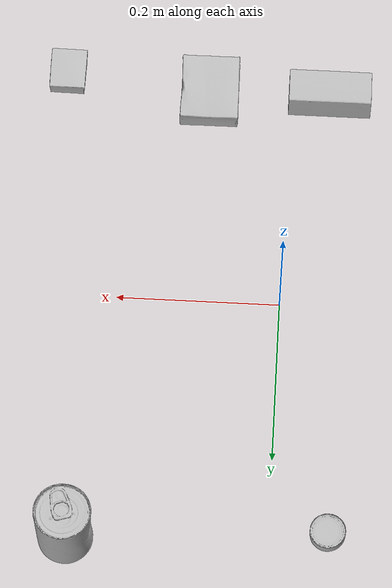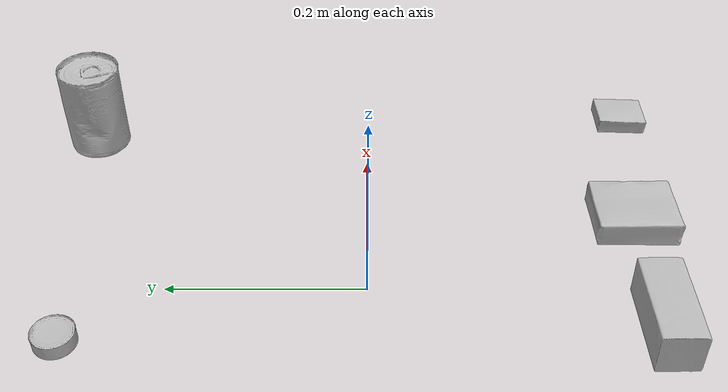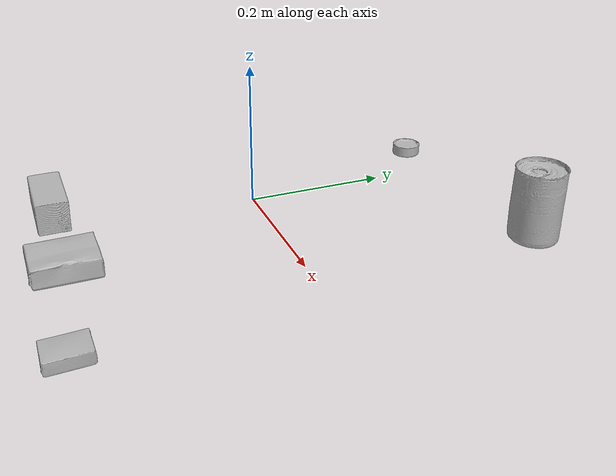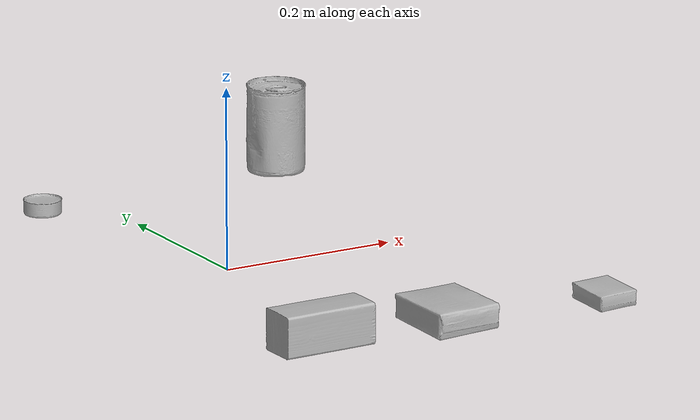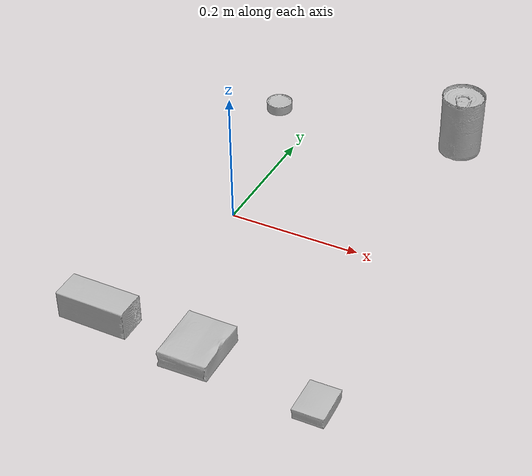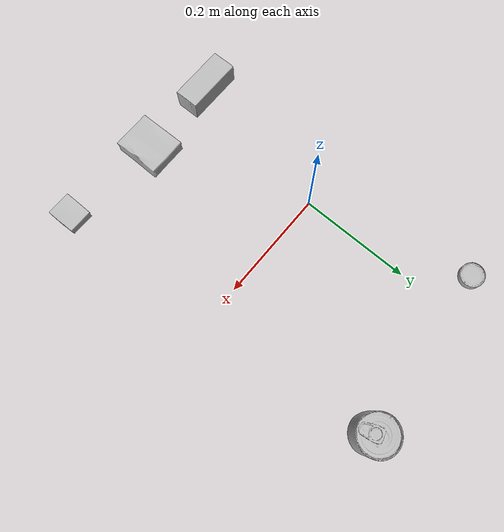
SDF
<?xml version="1.0" ?>
<sdf version="1.4">
  <world name="default">
    <light name="light1" type="point">
      <pose>0 0 1 0 0 0</pose>
      <diffuse>3 3 3 1</diffuse>
      <specular>3 3 3 1</specular>
    </light>
    <light name="light2" type="point">
      <pose>0 0.5 2 0 0 0</pose>
      <diffuse>1 1 1 1</diffuse>
      <specular>1 1 1 1</specular>
    </light>
    <light name="light3" type="point">
      <pose>0 0.5 2 0 0 0</pose>
      <diffuse>3 3 3 1</diffuse>
      <specular>3 3 3 1</specular>
    </light>
    <scene>
      <ambient>0.7 0.7 0.7</ambient>
    </scene>
    <model name="box1">
      <link name="link_box1">
        <collision name="default">
          <geometry>
            <mesh>
              <uri>model://pudding_box/collision_meshes/collision.obj</uri>
              <scale>0.5 0.5 0.5</scale>
            </mesh>
          </geometry>
          <surface>
            <friction>
              <ode>
                <mu>0.5</mu>
                <mu2>0.5</mu2>
              </ode>
            </friction>
          </surface>
        </collision>
        <visual name="default">
          <geometry>
            <mesh>
              <uri>model://pudding_box/visual_meshes/visual.dae</uri>
              <scale>0.5 0.5 0.5</scale>
            </mesh>
          </geometry>
        </visual>
        <inertial>
          <mass>0.049221161752939224</mass>
          <pose>0.00024474109522998333 0.00040339428232982755 -0.0002594413817860186 0.005213101772454675 -0.006603800120423707 0.020079827019105066</pose>
          <inertia>
            <ixx>1.3910499e-05</ixx>
            <iyy>9.3590825e-06</iyy>
            <izz>2.0542482e-05</izz>
            <ixy>0</ixy>
            <ixz>0</ixz>
            <iyz>0</iyz>
          </inertia>
        </inertial>
      </link>
      <pose>0.2797413170337677 -0.3002520799636841 0.009862902574241161 0.02234864916861904 -0.011391674284862428 -9.398371422774804e-05</pose>
    </model>
    <model name="box2">
      <link name="link_box2">
        <collision name="default">
          <geometry>
            <mesh>
              <uri>model://gelatin_box/collision_meshes/collision.obj</uri>
              <scale>1.0 1.0 1.0</scale>
            </mesh>
          </geometry>
          <surface>
            <friction>
              <ode>
                <mu>0.5</mu>
                <mu2>0.5</mu2>
              </ode>
            </friction>
          </surface>
        </collision>
        <visual name="default">
          <geometry>
            <mesh>
              <uri>model://gelatin_box/visual_meshes/visual.dae</uri>
              <scale>1.0 1.0 1.0</scale>
            </mesh>
          </geometry>
        </visual>
        <inertial>
          <mass>0.1975366622209549</mass>
          <pose>0.000431961816502735 0.00011156871187267825 -0.00036403207923285663 -0.0010503719683328595 -0.0047558182256164224 0.016440557608480007</pose>
          <inertia>
            <ixx>0.00013944478</ixx>
            <iyy>9.960467e-05</iyy>
            <izz>0.00021226601</izz>
            <ixy>0</ixy>
            <ixz>0</ixz>
            <iyz>0</iyz>
          </inertia>
        </inertial>
      </link>
      <pose>0.09995126724243164 -0.2800717055797577 0.01516831386834383 0.005597478734021536 -0.007304598263505775 7.717652597725185e-06</pose>
    </model>
    <model name="box3">
      <link name="link_box3">
        <collision name="default">
          <geometry>
            <mesh>
              <uri>model://wood_block/collision_meshes/collision.obj</uri>
              <scale>0.5 0.5 0.5</scale>
            </mesh>
          </geometry>
          <surface>
            <friction>
              <ode>
                <mu>0.5</mu>
                <mu2>0.5</mu2>
              </ode>
            </friction>
          </surface>
        </collision>
        <visual name="default">
          <geometry>
            <mesh>
              <uri>model://wood_block/visual_meshes/visual.dae</uri>
              <scale>0.5 0.5 0.5</scale>
            </mesh>
          </geometry>
        </visual>
        <inertial>
          <mass>0.2799808979034424</mass>
          <pose>-2.9066577553749084e-06 -0.000285404734313488 0.00013204291462898254 -0.05220811074253327 -0.005192695744074178 -0.0068613776969266935</pose>
          <inertia>
            <ixx>9.3664195e-05</ixx>
            <iyy>0.0002958853</iyy>
            <izz>0.00029477844</izz>
            <ixy>0</ixy>
            <ixz>0</ixz>
            <iyz>0</iyz>
          </inertia>
        </inertial>
      </link>
      <pose>-0.05005832016468048 -0.27943435311317444 0.022629261016845703 -0.005208557175208011 0.0057186907649564404 0.005304938193623896</pose>
    </model>
    <model name="can1">
      <link name="link_can1">
        <collision name="default">
          <geometry>
            <mesh>
              <uri>model://tomato_soup_can/collision_meshes/collision.obj</uri>
              <scale>1.0 1.0 1.0</scale>
            </mesh>
          </geometry>
          <surface>
            <friction>
              <ode>
                <mu>0.5</mu>
                <mu2>0.5</mu2>
              </ode>
            </friction>
          </surface>
        </collision>
        <visual name="default">
          <geometry>
            <mesh>
              <uri>model://tomato_soup_can/visual_meshes/visual.dae</uri>
              <scale>1.0 1.0 1.0</scale>
            </mesh>
          </geometry>
        </visual>
        <inertial>
          <mass>0.35683923959732056</mass>
          <pose>0.00012652271834667772 0.00010805513738887385 -0.0017973982030525804 0.007020067402313596 0.00042299257688944205 -0.009903281374499336</pose>
          <inertia>
            <ixx>0.0003912439</ixx>
            <iyy>0.00038898273</iyy>
            <izz>0.00020277809</izz>
            <ixy>0</ixy>
            <ixz>0</ixz>
            <iyz>0</iyz>
          </inertia>
        </inertial>
      </link>
      <pose>0.2399459183216095 0.31000205874443054 0.05127400904893875 -5.177825358758968e-07 -6.555926893515359e-07 1.5145930948437054e-07</pose>
    </model>
    <model name="can2">
      <link name="link_can2">
        <collision name="default">
          <geometry>
            <mesh>
              <uri>model://tuna_fish_can/collision_meshes/collision.obj</uri>
              <scale>0.5 0.5 0.5</scale>
            </mesh>
          </geometry>
          <surface>
            <friction>
              <ode>
                <mu>0.5</mu>
                <mu2>0.5</mu2>
              </ode>
            </friction>
          </surface>
        </collision>
        <visual name="default">
          <geometry>
            <mesh>
              <uri>model://tuna_fish_can/visual_meshes/visual.dae</uri>
              <scale>0.5 0.5 0.5</scale>
            </mesh>
          </geometry>
        </visual>
        <inertial>
          <mass>0.011508840136229992</mass>
          <pose>-2.0362092982395552e-05 -7.256176559167216e-06 -0.0005269026150926948 -0.0017944756095399476 0.0001716207335623094 0.24053890436657652</pose>
          <inertia>
            <ixx>1.5560124e-06</ixx>
            <iyy>1.5495272e-06</iyy>
            <izz>2.662559e-06</izz>
            <ixy>0</ixy>
            <ixz>0</ixz>
            <iyz>0</iyz>
          </inertia>
        </inertial>
      </link>
      <pose>-0.0700249969959259 0.2900227904319763 0.00851999782025814 -1.706985131022477e-08 -4.802132025515098e-10 -1.8047744502466722e-12</pose>
    </model>
  </world>
</sdf>
